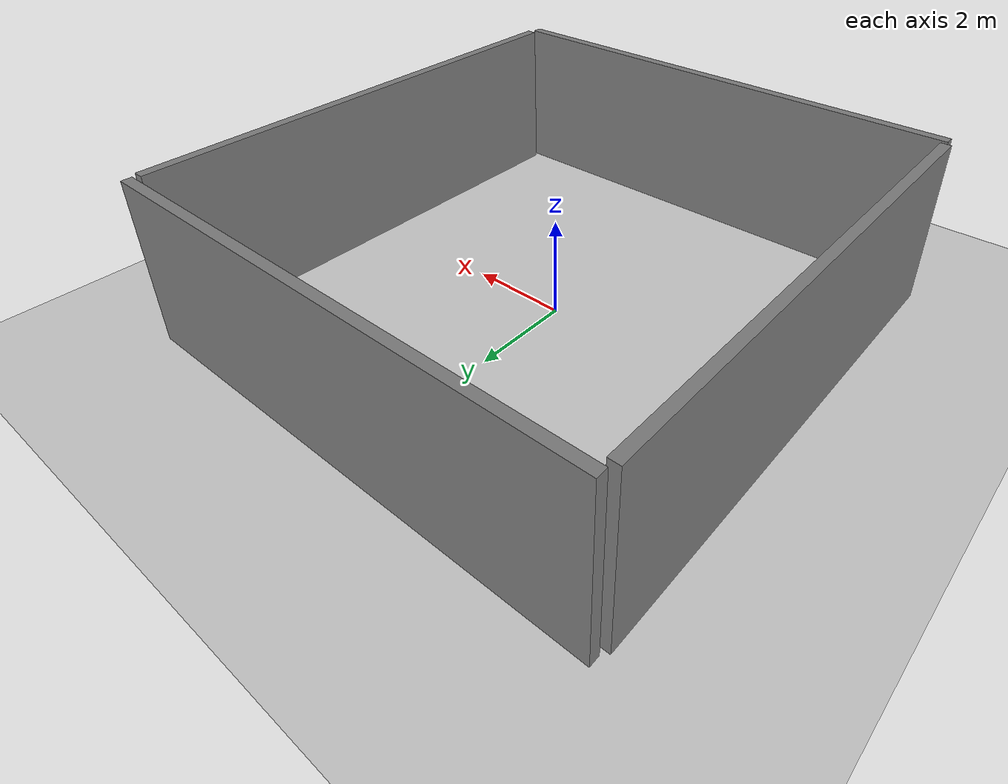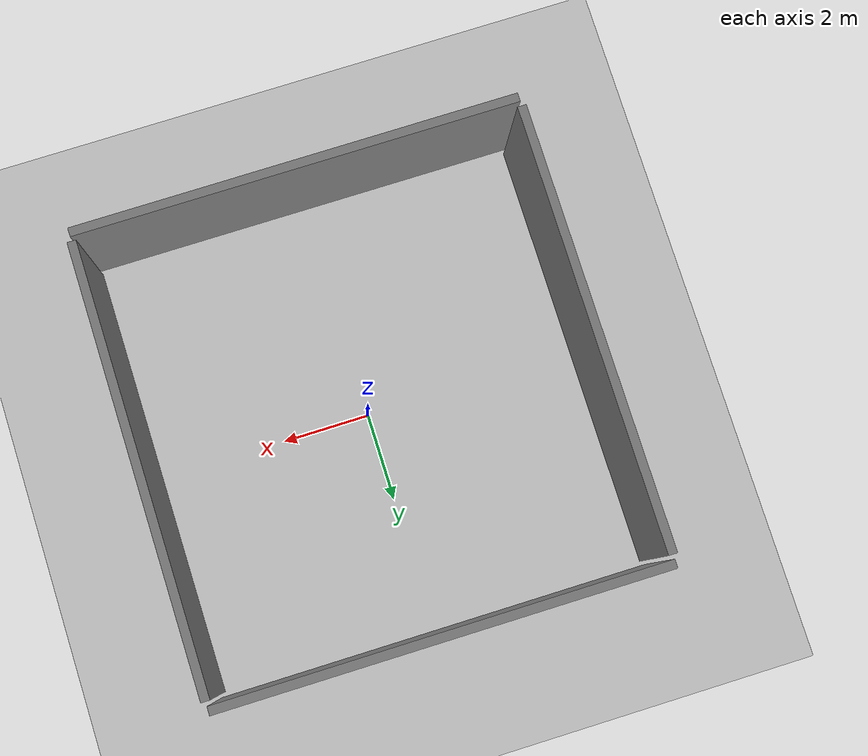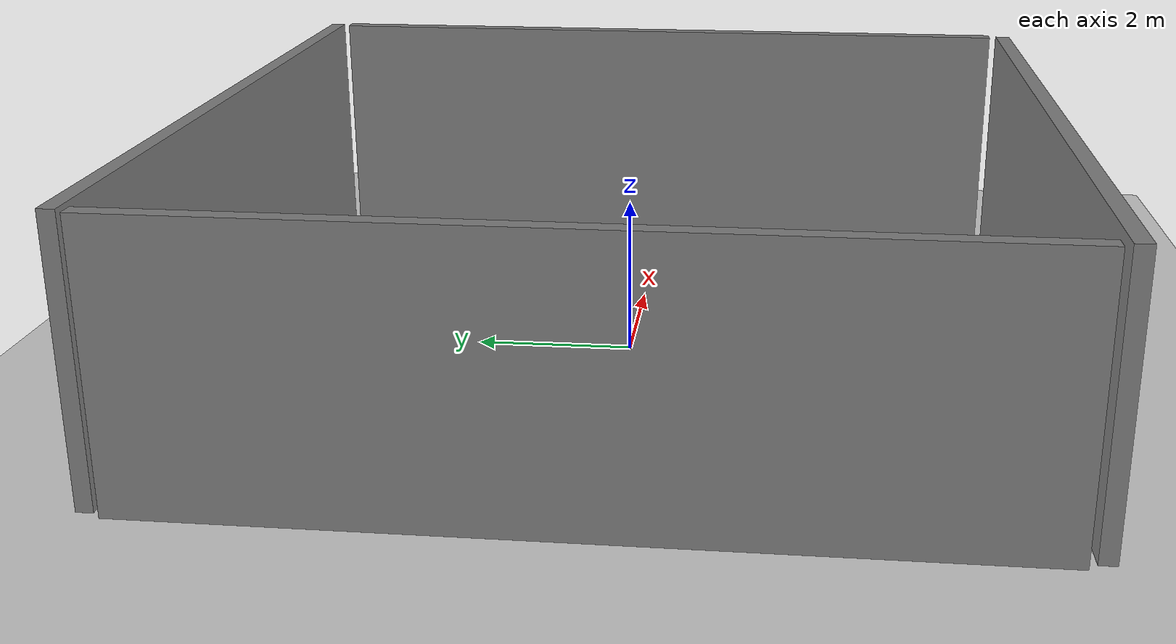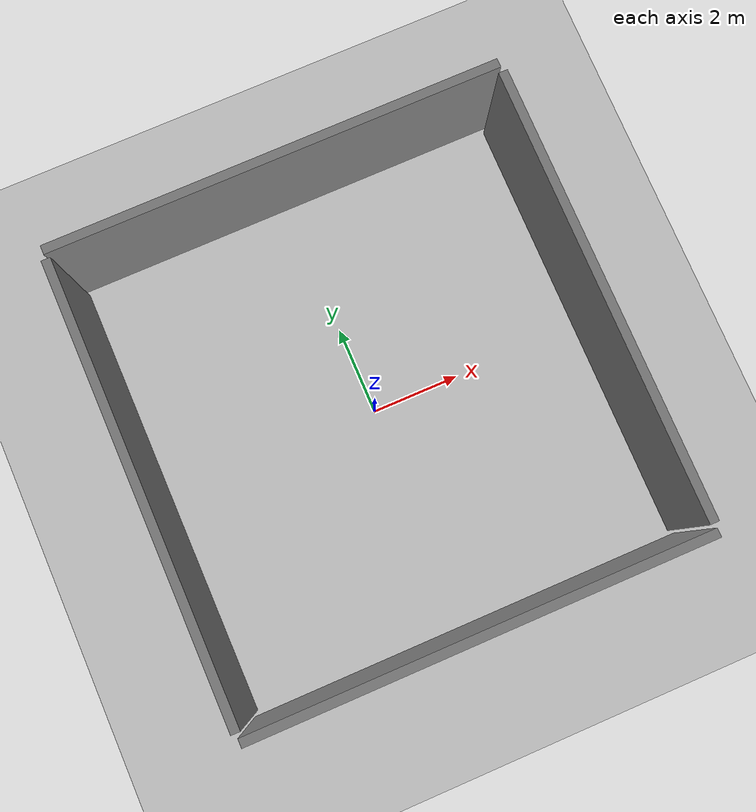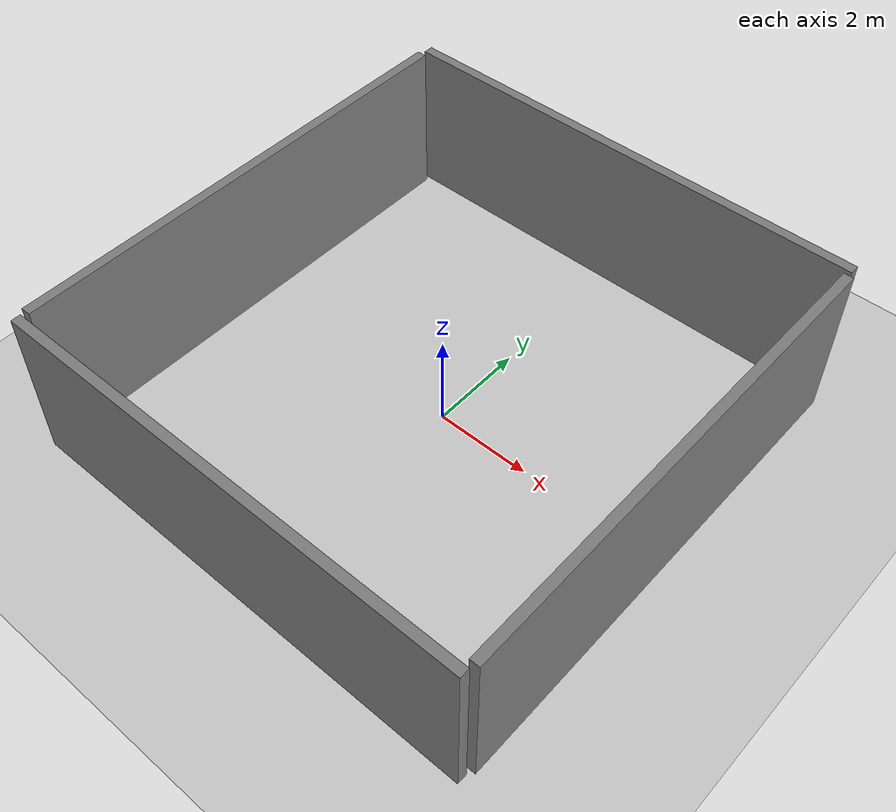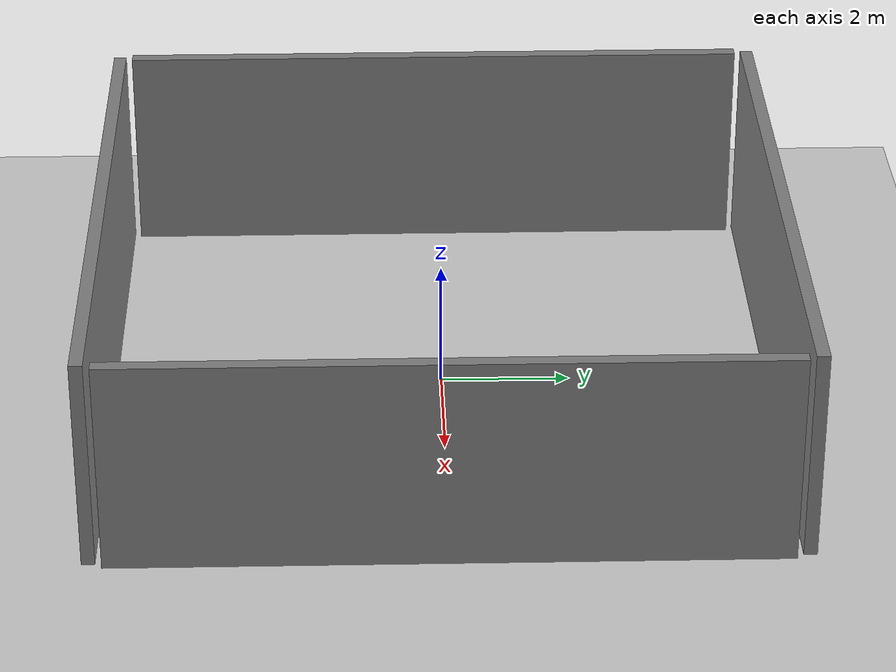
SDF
<?xml version="1.0" ?>
<sdf version="1.10">
    <world name="test_world">
        <physics name="1ms" type="ignored">
            <max_step_size>0.001</max_step_size>
            <real_time_factor>1.0</real_time_factor>
        </physics>
        <plugin
            filename="gz-sim-physics-system"
            name="gz::sim::systems::Physics">
        </plugin>
        <plugin
            filename="gz-sim-user-commands-system"
            name="gz::sim::systems::UserCommands">
        </plugin>
        <plugin
            filename="gz-sim-scene-broadcaster-system"
            name="gz::sim::systems::SceneBroadcaster">
        </plugin>
        <plugin
            filename="gz-sim-sensors-system"
            name="gz::sim::systems::Sensors">
            <render_engine>ogre2</render_engine>
        </plugin>

        <light type="directional" name="sun">
            <cast_shadows>true</cast_shadows>
            <pose>0 0 10 0 0 0</pose>
            <diffuse>0.8 0.8 0.8 1</diffuse>
            <specular>0.2 0.2 0.2 1</specular>
            <attenuation>
                <range>1000</range>
                <constant>0.9</constant>
                <linear>0.01</linear>
                <quadratic>0.001</quadratic>
            </attenuation>
            <direction>-0.5 0.1 -0.9</direction>
        </light>

        <model name="ground_plane">
            <static>true</static>
            <link name="link">
                <collision name="collision">
                <geometry>
                    <plane>
                    <normal>0 0 1</normal>
                    </plane>
                </geometry>
                </collision>
                <visual name="visual">
                <geometry>
                    <plane>
                    <normal>0 0 1</normal>
                    <size>100 100</size>
                    </plane>
                </geometry>
                <material>
                    <ambient>0.8 0.8 0.8 1</ambient>
                    <diffuse>0.8 0.8 0.8 1</diffuse>
                    <specular>0.8 0.8 0.8 1</specular>
                </material>
                </visual>
            </link>
        </model>

        <include>
            <uri>model://src/robot_simulation/worlds/square_room.sdf</uri>
        </include>

    </world>
</sdf>

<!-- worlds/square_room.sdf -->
<sdf version="1.4">
  <model name="square_room">
    <static>true</static>

    <link name="wall1">
      <pose>0 -5.2 1.4 0 0 0</pose>

      <collision name="wall1_collision">
        <geometry>
          <box>
            <size>10.0 0.2 3.8</size>
          </box>
        </geometry>
      </collision>

      <visual name="wall1_visual">
        <cast_shadows>false</cast_shadows>
        <geometry>
          <box>
            <size>10.0 0.2 3.8</size>
          </box>
        </geometry>
        <material>
            <ambient>0.5 0.5 0.5 1</ambient>
            <diffuse>0.5 0.5 0.5 1</diffuse>
            <specular>0.5 0.5 0.5 1</specular>
        </material>
      </visual>

    </link>

    <link name="wall2">
      <pose>0 5.2 1.4 0 0 0</pose>

      <collision name="wall2_collision">
        <geometry>
          <box>
            <size>10.0 0.2 3.8</size>
          </box>
        </geometry>
      </collision>

      <visual name="wall2_visual">
        <cast_shadows>false</cast_shadows>
        <geometry>
          <box>
            <size>10.0 0.2 3.8</size>
          </box>
        </geometry>
        <material>
            <ambient>0.5 0.5 0.5 1</ambient>
            <diffuse>0.5 0.5 0.5 1</diffuse>
            <specular>0.5 0.5 0.5 1</specular>
        </material>
      </visual>

    </link>

    <link name="wall3">
      <pose>-5 0 1.4 0 0 1.5708</pose>

      <collision name="wall3_collision">
        <geometry>
          <box>
            <size>10.0 0.2 3.8</size>
          </box>
        </geometry>
      </collision>

      <visual name="wall3_visual">
        <cast_shadows>false</cast_shadows>
        <geometry>
          <box>
            <size>10.0 0.2 3.8</size>
          </box>
        </geometry>
        <material>
            <ambient>0.5 0.5 0.5 1</ambient>
            <diffuse>0.5 0.5 0.5 1</diffuse>
            <specular>0.5 0.5 0.5 1</specular>
        </material>
      </visual>

    </link>

    <link name="wall4">
      <pose>5 0 1.4 0 0 1.5708</pose>

      <collision name="wall4_collision">
        <geometry>
          <box>
            <size>10.0 0.2 3.8</size>
          </box>
        </geometry>
      </collision>

      <visual name="wall4_visual">
        <cast_shadows>false</cast_shadows>
        <geometry>
          <box>
            <size>10.0 0.2 3.8</size>
          </box>
        </geometry>
        <material>
            <ambient>0.5 0.5 0.5 1</ambient>
            <diffuse>0.5 0.5 0.5 1</diffuse>
            <specular>0.5 0.5 0.5 1</specular>
        </material>
      </visual>

    </link>

  </model>
</sdf>
